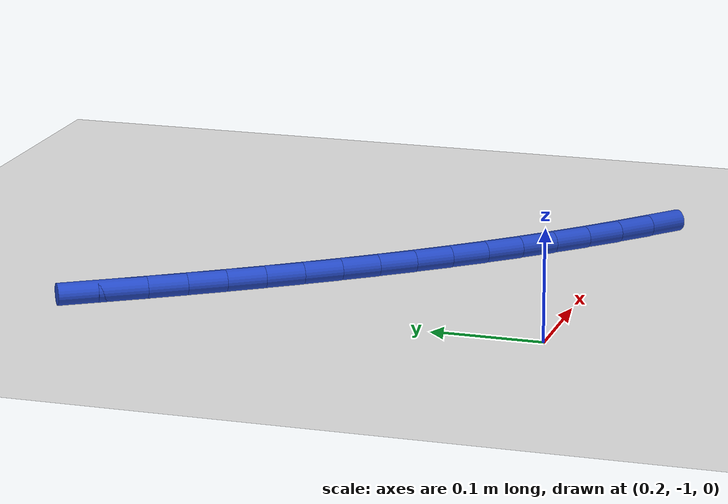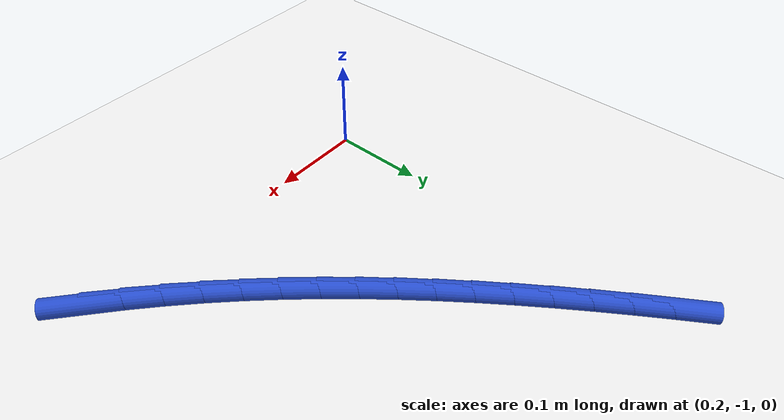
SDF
<sdf version="1.6">
 <world name="default">
  <model name="ground_plane">
   <static>1</static>
   <link name="link">
    <collision name="collision">
     <geometry><plane><normal>0 0 1</normal><size>100 100</size></plane></geometry>
     <surface><friction><ode><mu>100</mu><mu2>50</mu2></ode></friction></surface>
    </collision>
    <visual name="visual">
     <cast_shadows>0</cast_shadows>
     <geometry><plane><normal>0 0 1</normal><size>100 100</size></plane></geometry>
     <material>
      <script><uri>file://media/materials/scripts/gazebo.material</uri><name>Gazebo/WhiteGlow</name></script>
     </material>
    </visual>
   </link>
  </model>
  <model name="line">
   <link name="link_167">
    <pose>0.5402624495138673 -1.0108403102945849 0.01 0 1.57 -0.710811887610657</pose>
    <collision name="collision">
     <geometry><cylinder><radius>0.01</radius><length>0.08</length></cylinder></geometry>
    </collision>
    <visual name="visual">
     <material>
      <script><name>Gazebo/Blue</name><uri>file://media/materials/scripts/gazebo.material</uri></script>
     </material>
     <geometry><cylinder><radius>0.01</radius><length>0.08</length></cylinder></geometry>
    </visual>
   </link>
   <link name="link_168">
    <pose>0.512875535475987 -0.9872617834674323 0.01 0 1.57 -0.7402809706383999</pose>
    <collision name="collision">
     <geometry><cylinder><radius>0.01</radius><length>0.08</length></cylinder></geometry>
    </collision>
    <visual name="visual">
     <material>
      <script><name>Gazebo/Blue</name><uri>file://media/materials/scripts/gazebo.material</uri></script>
     </material>
     <geometry><cylinder><radius>0.01</radius><length>0.08</length></cylinder></geometry>
    </visual>
   </link>
   <link name="link_169">
    <pose>0.4863277091348495 -0.9630075594901985 0.01 0 1.57 -0.7685939407091301</pose>
    <collision name="collision">
     <geometry><cylinder><radius>0.01</radius><length>0.08</length></cylinder></geometry>
    </collision>
    <visual name="visual">
     <material>
      <script><name>Gazebo/Blue</name><uri>file://media/materials/scripts/gazebo.material</uri></script>
     </material>
     <geometry><cylinder><radius>0.01</radius><length>0.08</length></cylinder></geometry>
    </visual>
   </link>
   <link name="link_170">
    <pose>0.4605784777297684 -0.9381094966164437 0.01 0 1.57 -0.7956730936087292</pose>
    <collision name="collision">
     <geometry><cylinder><radius>0.01</radius><length>0.08</length></cylinder></geometry>
    </collision>
    <visual name="visual">
     <material>
      <script><name>Gazebo/Blue</name><uri>file://media/materials/scripts/gazebo.material</uri></script>
     </material>
     <geometry><cylinder><radius>0.01</radius><length>0.08</length></cylinder></geometry>
    </visual>
   </link>
   <link name="link_171">
    <pose>0.4355873485000568 -0.9125994530997276 0.01 0 1.57 -0.8214530868861517</pose>
    <collision name="collision">
     <geometry><cylinder><radius>0.01</radius><length>0.08</length></cylinder></geometry>
    </collision>
    <visual name="visual">
     <material>
      <script><name>Gazebo/Blue</name><uri>file://media/materials/scripts/gazebo.material</uri></script>
     </material>
     <geometry><cylinder><radius>0.01</radius><length>0.08</length></cylinder></geometry>
    </visual>
   </link>
   <link name="link_172">
    <pose>0.4113138286850279 -0.8865092871936094 0.01 0 1.57 -0.8458804310061169</pose>
    <collision name="collision">
     <geometry><cylinder><radius>0.01</radius><length>0.08</length></cylinder></geometry>
    </collision>
    <visual name="visual">
     <material>
      <script><name>Gazebo/Blue</name><uri>file://media/materials/scripts/gazebo.material</uri></script>
     </material>
     <geometry><cylinder><radius>0.01</radius><length>0.08</length></cylinder></geometry>
    </visual>
   </link>
   <link name="link_173">
    <pose>0.38771742552399496 -0.8598708571516495 0.01 0 1.57 -0.8689127039238558</pose>
    <collision name="collision">
     <geometry><cylinder><radius>0.01</radius><length>0.08</length></cylinder></geometry>
    </collision>
    <visual name="visual">
     <material>
      <script><name>Gazebo/Blue</name><uri>file://media/materials/scripts/gazebo.material</uri></script>
     </material>
     <geometry><cylinder><radius>0.01</radius><length>0.08</length></cylinder></geometry>
    </visual>
   </link>
   <link name="link_174">
    <pose>0.3647576462562714 -0.8327160212274068 0.01 0 1.57 -0.8905175624221886</pose>
    <collision name="collision">
     <geometry><cylinder><radius>0.01</radius><length>0.08</length></cylinder></geometry>
    </collision>
    <visual name="visual">
     <material>
      <script><name>Gazebo/Blue</name><uri>file://media/materials/scripts/gazebo.material</uri></script>
     </material>
     <geometry><cylinder><radius>0.01</radius><length>0.08</length></cylinder></geometry>
    </visual>
   </link>
   <link name="link_175">
    <pose>0.34239399812117033 -0.8050766376744416 0.01 0 1.57 -0.9106716204682135</pose>
    <collision name="collision">
     <geometry><cylinder><radius>0.01</radius><length>0.08</length></cylinder></geometry>
    </collision>
    <visual name="visual">
     <material>
      <script><name>Gazebo/Blue</name><uri>file://media/materials/scripts/gazebo.material</uri></script>
     </material>
     <geometry><cylinder><radius>0.01</radius><length>0.08</length></cylinder></geometry>
    </visual>
   </link>
   <link name="link_176">
    <pose>0.3205859883580051 -0.7769845647463134 0.01 0 1.57 -0.9293592577325382</pose>
    <collision name="collision">
     <geometry><cylinder><radius>0.01</radius><length>0.08</length></cylinder></geometry>
    </collision>
    <visual name="visual">
     <material>
      <script><name>Gazebo/Blue</name><uri>file://media/materials/scripts/gazebo.material</uri></script>
     </material>
     <geometry><cylinder><radius>0.01</radius><length>0.08</length></cylinder></geometry>
    </visual>
   </link>
   <link name="link_177">
    <pose>0.29929312420608883 -0.7484716606965817 0.01 0 1.57 -0.9465714118727634</pose>
    <collision name="collision">
     <geometry><cylinder><radius>0.01</radius><length>0.08</length></cylinder></geometry>
    </collision>
    <visual name="visual">
     <material>
      <script><name>Gazebo/Blue</name><uri>file://media/materials/scripts/gazebo.material</uri></script>
     </material>
     <geometry><cylinder><radius>0.01</radius><length>0.08</length></cylinder></geometry>
    </visual>
   </link>
   <link name="link_178">
    <pose>0.2784749129047349 -0.719569783778806 0.01 0 1.57 -0.9623043976235907</pose>
    <collision name="collision">
     <geometry><cylinder><radius>0.01</radius><length>0.08</length></cylinder></geometry>
    </collision>
    <visual name="visual">
     <material>
      <script><name>Gazebo/Blue</name><uri>file://media/materials/scripts/gazebo.material</uri></script>
     </material>
     <geometry><cylinder><radius>0.01</radius><length>0.08</length></cylinder></geometry>
    </visual>
   </link>
   <link name="link_179">
    <pose>0.25809086169325657 -0.6903107922465465 0.01 0 1.57 -0.976558785269376</pose>
    <collision name="collision">
     <geometry><cylinder><radius>0.01</radius><length>0.08</length></cylinder></geometry>
    </collision>
    <visual name="visual">
     <material>
      <script><name>Gazebo/Blue</name><uri>file://media/materials/scripts/gazebo.material</uri></script>
     </material>
     <geometry><cylinder><radius>0.01</radius><length>0.08</length></cylinder></geometry>
    </visual>
   </link>
   <link name="link_180">
    <pose>0.23810047781096713 -0.6607265443533626 0.01 0 1.57 -0.9893383614775016</pose>
    <collision name="collision">
     <geometry><cylinder><radius>0.01</radius><length>0.08</length></cylinder></geometry>
    </collision>
    <visual name="visual">
     <material>
      <script><name>Gazebo/Blue</name><uri>file://media/materials/scripts/gazebo.material</uri></script>
     </material>
     <geometry><cylinder><radius>0.01</radius><length>0.08</length></cylinder></geometry>
    </visual>
   </link>
   <link name="link_181">
    <pose>0.2184632684971798 -0.6308488983528142 0.01 0 1.57 -1.000649187211448</pose>
    <collision name="collision">
     <geometry><cylinder><radius>0.01</radius><length>0.08</length></cylinder></geometry>
    </collision>
    <visual name="visual">
     <material>
      <script><name>Gazebo/Blue</name><uri>file://media/materials/scripts/gazebo.material</uri></script>
     </material>
     <geometry><cylinder><radius>0.01</radius><length>0.08</length></cylinder></geometry>
    </visual>
   </link>
   <link name="link_182">
    <pose>0.19913874099120776 -0.6007097124984606 0.01 0 1.57 -1.010662020080025</pose>
    <collision name="collision">
     <geometry><cylinder><radius>0.01</radius><length>0.08</length></cylinder></geometry>
    </collision>
    <visual name="visual">
     <material>
      <script><name>Gazebo/Blue</name><uri>file://media/materials/scripts/gazebo.material</uri></script>
     </material>
     <geometry><cylinder><radius>0.01</radius><length>0.08</length></cylinder></geometry>
    </visual>
   </link>
  </model>
 </world>
</sdf>
